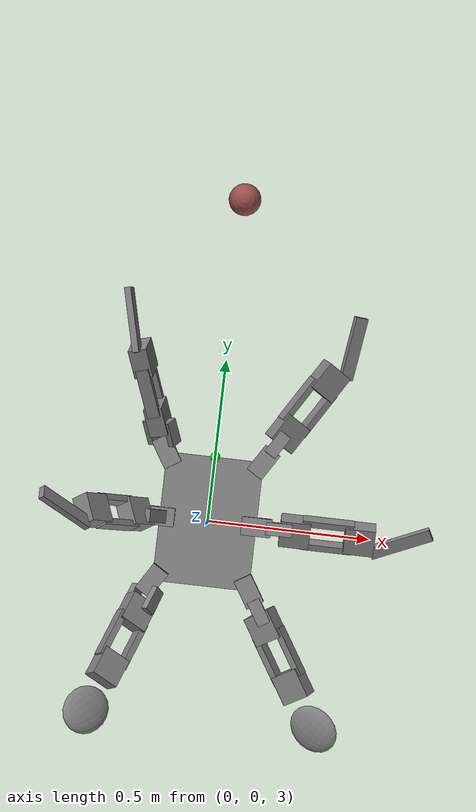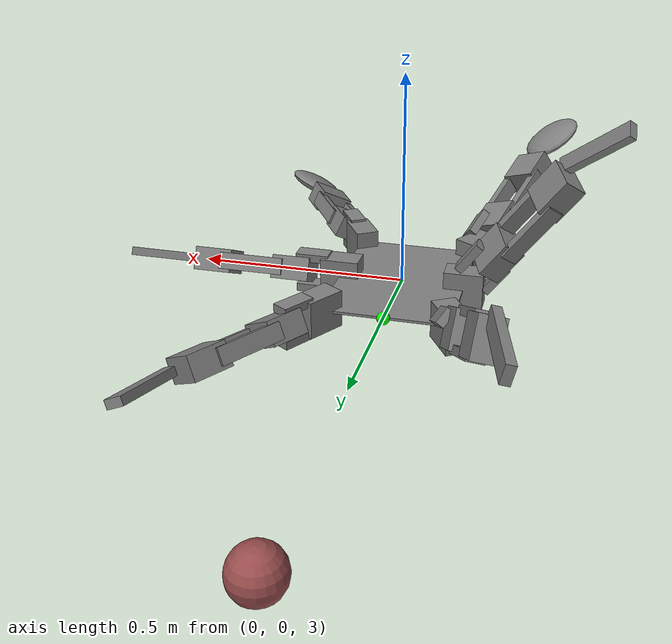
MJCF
<mujoco model="PaddleCrabSwimming">
	<include file="../common.xml" />
	<include file="model.xml" />

	<custom>
		<numeric name="agent_planner" data="6" />
		<numeric name="agent_horizon" data="1.25" />
		<numeric name="agent_integrator" data="2" />
		<numeric name="agent_differentiable" data="1" />
		<numeric name="agent_timestep" data="0.02" />
		<numeric name="sampling_trajectories" data="128" />
		<numeric name="sampling_spline_points" data="8" />
		<numeric name="sampling_exploration" data="0.12" />
		<numeric name="gradient_spline_points" data="20" />
		<numeric name="estimator" data="0" />
		<numeric name="residual_DesiredSpeed"            data="0.75" />
		<numeric name="residual_SlowRadius"              data="0.20" />
		<!-- LocAxis is kept for compatibility; direction tracking uses body-center translation terms only. -->
		<numeric name="residual_LocAxisX"                data="0.0" />
		<numeric name="residual_LocAxisY"                data="1.0" />
		<numeric name="residual_LocAxisZ"                data="0.0" />
		<!-- UpAxis: robot body upright axis; for this model, body +Z is normal to the plate -->
		<numeric name="residual_UpAxisX"                 data="0.0" />
		<numeric name="residual_UpAxisY"                 data="0.0" />
		<numeric name="residual_UpAxisZ"                 data="1.0" />
		<!-- EnvNormal: world upright direction; for this swimming setup, world +Z is height -->
		<numeric name="residual_EnvNormalX"              data="0.0" />
		<numeric name="residual_EnvNormalY"              data="0.0" />
		<numeric name="residual_EnvNormalZ"              data="1.0" />
		<numeric name="residual_ControlSmoothingEnabled" data="1" />
		<numeric name="residual_ControlSmoothingTau"     data="0.18" />
	</custom>

	<worldbody>
		<!-- Target is initially placed in front of the robot in world +Y. -->
		<body name="target" mocap="true" pos="0 1.0 3.0">
			<geom name="target" type="sphere" size="0.05" material="target"/>
			<light name="target_light" diffuse=".7 .7 .7" pos="0 0 0.5"/>
		</body>
	</worldbody>

	<sensor>
		<!-- Residual weights tuned to restore motion while keeping rear bias -->
		<user name="Position"       dim="3"  user="0 4.0  0 100.0" />
		<user name="Progress"       dim="1"  user="0 12.0  0 15.0" />
		<user name="Slip"           dim="3"  user="0 0.3  0 10.0" />
		<user name="Align"          dim="3"  user="0 0.2  0 10.0" />
		<user name="Trim"           dim="3"  user="0 0.2  0 10.0" /> <!-- Small trim to discourage tumbling -->
		<user name="AngVel"         dim="3"  user="0 0.3  0 10.0" />
		<user name="Control"        dim="1"  user="0 0.02 0 1.0" />
		<user name="ControlRate"    dim="18" user="0 0.25  0 10.0" />
		<!-- Residual-driving sensors -->
		<framepos    name="base_cog_pos_task"       objtype="site" objname="base_cog" />
		<framepos    name="base_pos_task"           objtype="site" objname="base_cog" />
		<framepos    name="front_pos_task"          objtype="site" objname="front_point" />
		<framepos    name="target_pos_task"         objtype="body" objname="target" />
		<framelinvel name="base_vel_world_task"     objtype="site" objname="base_cog" />
		<frameangvel name="base_angvel_world_task"  objtype="site" objname="base_cog" />
	</sensor>
</mujoco>

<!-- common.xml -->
<mujoco>

    <visual>
        <headlight ambient=".4 .4 .4" diffuse=".8 .8 .8" specular="0.1 0.1 0.1"/>
        <map znear=".01"/>
        <quality shadowsize="2048"/>
        <global elevation="-15"/>
    </visual>

    <asset>
        <texture name="blue_grid" type="2d" builtin="checker" rgb1=".02 .14 .44" rgb2=".27 .55 1" width="300" height="300" mark="edge" markrgb="1 1 1"/>
        <material name="blue_grid" texture="blue_grid" texrepeat="1 1" texuniform="true" reflectance=".2"/>

        <texture name="grey_grid" type="2d" builtin="checker" rgb1=".26 .26 .26" rgb2=".6 .6 .6" width="300" height="300" mark="edge" markrgb="1 1 1"/>
        <material name="grey_grid" texture="grey_grid" texrepeat="1 1" texuniform="true" reflectance=".2"/>
        <texture name="skybox" type="skybox" builtin="gradient" rgb1=".66 .79 1" rgb2=".9 .91 .93" width="800" height="800"/>

        <material name="self" rgba=".7 .5 .3 1"/>
        <material name="self_default" rgba=".7 .5 .3 1"/>
        <material name="self_highlight" rgba="0 .5 .3 1"/>
        <material name="effector" rgba=".7 .4 .2 1"/>
        <material name="effector_default" rgba=".7 .4 .2 1"/>
        <material name="effector_highlight" rgba="0 .5 .3 1"/>
        <material name="decoration" rgba=".2 .6 .3 1"/>
        <material name="eye" rgba="0 .2 1 1"/>
        <material name="target" rgba=".6 .3 .3 1"/>
        <material name="target_default" rgba=".6 .3 .3 1"/>
        <material name="target_highlight" rgba=".6 .3 .3 .4"/>
        <material name="site" rgba=".5 .5 .5 .3"/>
    </asset>

    <size memory="1M"/>

    <statistic extent="0.4" center="0.3 0.1 0"/>

    <visual>
        <quality shadowsize="8192"/>
        <global azimuth="180" elevation="-30"/>
    </visual>

    <default>
        <geom friction="1.0"/>
    </default>

    <compiler angle="radian" autolimits="true"/>

    <asset>
        <mesh name="apple" file="../../shared_assets/apple/apple.obj" />
        <mesh name="apple_contact0" file="../../shared_assets/apple/contact0.stl"  />
        <mesh name="apple_contact1" file="../../shared_assets/apple/contact1.stl"  />

        <mesh name="doorknob" file="../../shared_assets/doorknob/doorknob.obj" />

        <mesh name="flashlight" file="../../shared_assets/flashlight/flashlight.obj" />
        <mesh name="flashlight_contact0" file="../../shared_assets/flashlight/contact0.stl"  />
        <mesh name="flashlight_contact1" file="../../shared_assets/flashlight/contact1.stl"  />

        <mesh name="hammer" file="../../shared_assets/hammer/hammer.obj" />
        <mesh name="hammer_contact0" file="../../shared_assets/hammer/contact0.stl"  />
        <mesh name="hammer_contact1" file="../../shared_assets/hammer/contact1.stl"  />

        <mesh name="phone" file="../../shared_assets/phone/phone.obj" />
        <mesh name="phone_contact0" file="../../shared_assets/phone/contact0.stl"  />
        <mesh name="phone_contact1" file="../../shared_assets/phone/contact1.stl"  />
        <mesh name="phone_contact2" file="../../shared_assets/phone/contact2.stl"  />

        <mesh name="stapler" file="../../shared_assets/stapler/stapler.obj" />
        <mesh name="stapler_contact0" file="../../shared_assets/stapler/contact0.stl"  />
        <mesh name="stapler_contact1" file="../../shared_assets/stapler/contact1.stl"  />
        <mesh name="stapler_contact2" file="../../shared_assets/stapler/contact2.stl"  />
        <mesh name="stapler_contact3" file="../../shared_assets/stapler/contact3.stl"  />
        <mesh name="stapler_contact4" file="../../shared_assets/stapler/contact4.stl"  />

        <mesh name="waterbottle" file="../../shared_assets/waterbottle/waterbottle.obj" />
        <mesh name="waterbottle_contact0" file="../../shared_assets/waterbottle/contact0.stl"  />
        <mesh name="waterbottle_contact1" file="../../shared_assets/waterbottle/contact1.stl"  />
    </asset>

</mujoco>

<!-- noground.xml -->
<mujoco>
  <!-- No ground plane for fluid environments -->
  <worldbody>
    <!-- Empty worldbody content - ground plane not included -->
  </worldbody>
</mujoco>

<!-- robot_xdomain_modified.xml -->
<mujoco model="hexapod">
  <option integrator="implicit" jacobian="sparse" timestep="0.005" gravity="0 0 0" density="1000" viscosity="0.0009" cone="elliptic" /><size memory="4G" />
  <include file="noground.xml" />
  <visual>
    <scale com=".5" framewidth=".05" jointwidth=".01" />
    <global offheight="2160" offwidth="1920" />
  </visual>
  <default>
    <default class="dynamixel">
      <position ctrlrange="-3.14 3.14" ctrllimited="true" forcerange="-3.1 3.1" forcelimited="true" kp="80" />
    </default>
    <default class="DVL">
      <camera mode="fixed" resolution="2 2" fovy="45" />
    </default>
  </default>

  <asset>
  </asset>
  <worldbody>
      <camera pos="0.026 1.593 4.498" xyaxes="-1.000 0.017 0.000 -0.013 -0.728 0.685" name="main_camera" />

      <body name="plate" pos="0 00 3" euler="0 0 0">
        <site name="base_cog" pos="0 0 0" size="0.005" rgba="1 0 0 0" type="sphere" /><site name="front_point" pos="0 0.20 0" size="0.015" rgba="0 1 0 1" type="sphere" /><geom fluidshape="ellipsoid" type="box" size=".15 .2 .003" mass="1" contype="0" conaffinity="0" />
        <geom fluidshape="ellipsoid" type="box" size=".0465 0.0285 .044" euler="0 0 45" pos=".15 .2 0" mass=".34" contype="0" conaffinity="0" />
        <geom fluidshape="ellipsoid" type="box" size=".0465 0.0285 .044" pos=".15 0 0" mass=".34" contype="0" conaffinity="0" />
        <geom fluidshape="ellipsoid" type="box" size=".0465 0.0285 .044" pos=".15 -0.2 0" euler="0 0 -45" mass=".34" contype="0" conaffinity="0" />
        <geom fluidshape="ellipsoid" type="box" size=".0465 0.0285 .044" pos="-.15 .2 0" euler="0 0 -45" mass=".34" contype="0" conaffinity="0" />
        <geom fluidshape="ellipsoid" type="box" size=".0465 0.0285 .044" pos="-.15 0 0" euler="0 0 0" mass=".34" contype="0" conaffinity="0" />
        <geom fluidshape="ellipsoid" type="box" size=".0465 0.0285 .044" pos="-.15 -0.2 0" euler="0 0 45" mass=".34" contype="0" conaffinity="0" />
        <camera class="DVL" name="DVLcam" pos="0 -0.15 0" euler="0 0 45" />

        <freejoint />
        <body name="box" pos="0 0 0" euler="0 0 0">
          <camera pos="-.879 0.100 0.00" euler="0 -90 0" name="plate_camera" mode="track" />
          <site name="IMU" pos="0 0.051 0" euler="0 0 0" size="0.001 0.001 0.001" rgba="1 0 0 1" type="box" />

        </body>

        <body name="proximal segment front right" pos=".15 .2 0" euler="0 0 45">
          <geom fluidshape="ellipsoid" type="box" size=".04 0.02 .01" pos=".07 0 .04" contype="0" conaffinity="0" />
          <geom fluidshape="ellipsoid" type="box" size=".04 0.02 .01" pos=".07 0 -0.04" contype="0" conaffinity="0" />
          <joint name="psfr" type="hinge" axis="0 0 1" pos="0.028 0 0" damping="1" />
          <geom fluidshape="ellipsoid" type="box" size=".0465 0.0285 .044" pos=".12 0 0" euler="90 0 0" mass=".34" contype="0" conaffinity="0" />

          <body name="mid segment front right" pos=".12 0 0" euler="90 0 0">
            <geom fluidshape="ellipsoid" type="box" size=".08 .02 0.01" pos=".1 0 0.04" contype="0" conaffinity="0" />
            <geom fluidshape="ellipsoid" type="box" size=".08 .02 0.01" pos=".1 0 -0.04" contype="0" conaffinity="0" />
            <joint name="msfr" type="hinge" axis="0 0 1" pos="0.028 0 0" damping="1" />
            <geom fluidshape="ellipsoid" type="box" size=".0465 0.0285 .044" pos=".2 0 0" mass=".34" contype="0" conaffinity="0" />

            <body name="distal segment front right" pos=".2 0 0">
              <joint name="dsfr" type="hinge" axis="0 0 1" pos="0.028 0 0" damping="1" />
              <geom fluidshape="ellipsoid" type="box" size=".02 .01 0.09887" pos="0.128 0 0" euler="0 90 0" contype="0" conaffinity="0" />
            </body>
          </body>
        </body>

        <body name="proximal segment center right" pos=".15 0 0" euler="0 0 0">
          <geom fluidshape="ellipsoid" type="box" size=".04 0.02 .01" pos=".07 0 .04" contype="0" conaffinity="0" />
          <geom fluidshape="ellipsoid" type="box" size=".04 0.02 .01" pos=".07 0 -0.04" contype="0" conaffinity="0" />
          <joint name="pscr" type="hinge" axis="0 0 1" pos="0.028 0 0" damping="1" />
          <geom fluidshape="ellipsoid" type="box" size=".0465 0.0285 .044" pos=".12 0 0" euler="90 0 0" mass=".34" contype="0" conaffinity="0" />

          <body name="mid segment center right" pos=".12 0 0" euler="90 0 0">
            <geom fluidshape="ellipsoid" type="box" size=".08 .02 0.01" pos=".1 0 0.04" contype="0" conaffinity="0" />
            <geom fluidshape="ellipsoid" type="box" size=".08 .02 0.01" pos=".1 0 -0.04" contype="0" conaffinity="0" />
            <joint name="mscr" type="hinge" axis="0 0 1" pos="0.028 0 0" damping="1" />
            <geom fluidshape="ellipsoid" type="box" size=".0465 0.0285 .044" pos=".2 0 0" mass=".34" contype="0" conaffinity="0" />

            <body name="distal segment center right" pos=".2 0 0">
              <joint name="dscr" type="hinge" axis="0 0 1" pos="0.028 0 0" damping="1" />
              <geom fluidshape="ellipsoid" type="box" size=".02 .01 0.09887" pos="0.128 0 0" euler="0 90 0" contype="0" conaffinity="0" />
            </body>
          </body>
        </body>

        <body name="proximal segment back right" pos=".15 -.2 0" euler="0 0 -45">
          <geom fluidshape="ellipsoid" type="box" size=".04 0.02 .01" pos=".07 0 .04" contype="0" conaffinity="0" />
          <geom fluidshape="ellipsoid" type="box" size=".04 0.02 .01" pos=".07 0 -0.04" contype="0" conaffinity="0" />
          <joint name="psbr" type="hinge" axis="0 0 1" pos="0.028 0 0" damping="1" />
          <geom fluidshape="ellipsoid" type="box" size=".0465 0.0285 .044" pos=".12 0 0" euler="90 0 0" mass=".34" contype="0" conaffinity="0" />

          <body name="mid segment back right" pos=".12 0 0" euler="90 0 0">
            <geom fluidshape="ellipsoid" type="box" size=".08 .02 0.01" pos=".1 0 0.04" contype="0" conaffinity="0" />
            <geom fluidshape="ellipsoid" type="box" size=".08 .02 0.01" pos=".1 0 -0.04" contype="0" conaffinity="0" />
            <joint name="msbr" type="hinge" axis="0 0 1" pos="0.028 0 0" damping="1" />
            <geom fluidshape="ellipsoid" type="box" size=".0465 0.0285 .044" pos=".2 0 0" mass=".34" contype="0" conaffinity="0" />

            <body name="distal segment back right" pos=".2 0 0">
              <joint name="dsbr" type="hinge" axis="1 0 0" pos="0.028 0 0" damping="1" />
              <geom fluidshape="ellipsoid" type="ellipsoid" size=".07 0.02 0.08" pos="0.15 0 0" euler="0 90 0" mass="0.34" contype="0" conaffinity="0" />
            </body>

          </body>
        </body>

        <body name="proximal segment front left" pos="-.15 .2 0" euler="0 180 45">
          <geom fluidshape="ellipsoid" type="box" size=".04 0.02 .01" pos=".07 0 .04" contype="0" conaffinity="0" />
          <geom fluidshape="ellipsoid" type="box" size=".04 0.02 .01" pos=".07 0 -0.04" contype="0" conaffinity="0" />
          <joint name="psfl" type="hinge" axis="0 0 -1" pos="0.028 0 0" damping="1" />
          <geom fluidshape="ellipsoid" type="box" size=".0465 0.0285 .044" pos=".12 0 0" euler="90 0 0" mass=".34" contype="0" conaffinity="0" />

          <body name="mid segment front left" pos=".12 0 0" euler="90 0 0">
            <geom fluidshape="ellipsoid" type="box" size=".08 .02 0.01" pos=".1 0 0.04" contype="0" conaffinity="0" />
            <geom fluidshape="ellipsoid" type="box" size=".08 .02 0.01" pos=".1 0 -0.04" contype="0" conaffinity="0" />
            <joint name="msfl" type="hinge" axis="0 0 -1" pos="0.028 0 0" damping="1" />
            <geom fluidshape="ellipsoid" type="box" size=".0465 0.0285 .044" pos=".2 0 0" mass=".34" contype="0" conaffinity="0" />

            <body name="distal segment front left" pos=".2 0 0">
              <joint name="dsfl" type="hinge" axis="0 0 -1" pos="0.028 0 0" damping="1" />
              <geom fluidshape="ellipsoid" type="box" size=".02 .01 0.09887" pos="0.128 0 0" euler="0 90 0" contype="0" conaffinity="0" />
            </body>
          </body>
        </body>

        <body name="proximal segment center left" pos="-.15 0 0" euler="0 180 0">
          <geom fluidshape="ellipsoid" type="box" size=".04 0.02 .01" pos=".07 0 .04" contype="0" conaffinity="0" />
          <geom fluidshape="ellipsoid" type="box" size=".04 0.02 .01" pos=".07 0 -0.04" contype="0" conaffinity="0" />
          <joint name="pscl" type="hinge" axis="0 0 -1" pos="0.028 0 0" damping="1" />
          <geom fluidshape="ellipsoid" type="box" size=".0465 0.0285 .044" pos=".12 0 0" euler="90 0 0" mass=".34" contype="0" conaffinity="0" />

          <body name="mid segment center left" pos=".12 0 0" euler="90 0 0">
            <geom fluidshape="ellipsoid" type="box" size=".08 .02 0.01" pos=".1 0 0.04" contype="0" conaffinity="0" />
            <geom fluidshape="ellipsoid" type="box" size=".08 .02 0.01" pos=".1 0 -0.04" contype="0" conaffinity="0" />
            <joint name="mscl" type="hinge" axis="0 0 -1" pos="0.028 0 0" damping="1" />
            <geom fluidshape="ellipsoid" type="box" size=".0465 0.0285 .044" pos=".2 0 0" mass=".34" contype="0" conaffinity="0" />

            <body name="distal segment center left" pos=".2 0 0">
              <joint name="dscl" type="hinge" axis="0 0 -1" pos="0.028 0 0" damping="1" />
              <geom fluidshape="ellipsoid" type="box" size=".02 .01 0.09887" pos="0.128 0 0" euler="0 90 0" contype="0" conaffinity="0" />
            </body>
          </body>
        </body>

        <body name="proximal segment back left" pos="-.15 -.2 0" euler="0 180 -45">
          <geom fluidshape="ellipsoid" type="box" size=".04 0.02 .01" pos=".07 0 .04" contype="0" conaffinity="0" />
          <geom fluidshape="ellipsoid" type="box" size=".04 0.02 .01" pos=".07 0 -0.04" contype="0" conaffinity="0" />
          <joint name="psbl" type="hinge" axis="0 0 -1" pos="0.028 0 0" damping="1" />
          <geom fluidshape="ellipsoid" type="box" size=".0465 0.0285 .044" pos=".12 0 0" euler="90 0 0" mass=".34" contype="0" conaffinity="0" />

          <body name="mid segment back left" pos=".12 0 0" euler="90 0 0">
            <geom fluidshape="ellipsoid" type="box" size=".08 .02 0.01" pos=".1 0 0.04" contype="0" conaffinity="0" />
            <geom fluidshape="ellipsoid" type="box" size=".08 .02 0.01" pos=".1 0 -0.04" contype="0" conaffinity="0" />
            <joint name="msbl" type="hinge" axis="0 0 -1" pos="0.028 0 0" damping="1" />
            <geom fluidshape="ellipsoid" type="box" size=".0465 0.0285 .044" pos=".2 0 0" mass=".34" contype="0" conaffinity="0" />

            <body name="distal segment back left" pos=".2 0 0">
              <joint name="dsbl" type="hinge" axis="-1 0 0" pos="0.028 0 0" damping="1" />
              <geom fluidshape="ellipsoid" type="ellipsoid" size=".07 0.02 0.08" pos="0.15 0 0" euler="0 90 0" mass="0.34" contype="0" conaffinity="0" />
            </body>
          </body>
        </body>

      </body>

  </worldbody>
  <actuator>
    <position name="R1_1" joint="psfr" class="dynamixel" ctrlrange="-0.9 0.9" ctrllimited="true" />
    <position name="R1_2" joint="msfr" class="dynamixel" ctrlrange="-0.9 0.9" ctrllimited="true" />
    <position name="R1_3" joint="dsfr" class="dynamixel" ctrlrange="-0.9 0.9" ctrllimited="true" />

    <position name="R2_1" joint="pscr" class="dynamixel" ctrlrange="-1.0 1.0" ctrllimited="true" />
    <position name="R2_2" joint="mscr" class="dynamixel" ctrlrange="-1.0 1.0" ctrllimited="true" />
    <position name="R2_3" joint="dscr" class="dynamixel" ctrlrange="-1.0 1.0" ctrllimited="true" />

    <position name="R3_1" joint="psbr" class="dynamixel" ctrlrange="-1.2 1.2" ctrllimited="true" />
    <position name="R3_2" joint="msbr" class="dynamixel" ctrlrange="-1.2 1.2" ctrllimited="true" />
    <position name="R3_3" joint="dsbr" class="dynamixel" ctrlrange="-1.5 1.5" ctrllimited="true" />

    <position name="L1_1" joint="psfl" class="dynamixel" ctrlrange="-0.9 0.9" ctrllimited="true" />
    <position name="L1_2" joint="msfl" class="dynamixel" ctrlrange="-0.9 0.9" ctrllimited="true" />
    <position name="L1_3" joint="dsfl" class="dynamixel" ctrlrange="-0.9 0.9" ctrllimited="true" />

    <position name="L2_1" joint="pscl" class="dynamixel" ctrlrange="-1.0 1.0" ctrllimited="true" />
    <position name="L2_2" joint="mscl" class="dynamixel" ctrlrange="-1.0 1.0" ctrllimited="true" />
    <position name="L2_3" joint="dscl" class="dynamixel" ctrlrange="-1.0 1.0" ctrllimited="true" />

    <position name="L3_1" joint="psbl" class="dynamixel" ctrlrange="-1.2 1.2" ctrllimited="true" />
    <position name="L3_2" joint="msbl" class="dynamixel" ctrlrange="-1.2 1.2" ctrllimited="true" />
    <position name="L3_3" joint="dsbl" class="dynamixel" ctrlrange="-1.5 1.5" ctrllimited="true" />

  </actuator>
</mujoco>

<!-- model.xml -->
<!-- Wrapper for cross-domain paddle crab swimming robot -->
<!-- This file includes the patched robot model which has reference sites added -->
<mujoco model="paddle_crab_model_wrapper">
  <include file="robot_xdomain_modified.xml" />
</mujoco>
